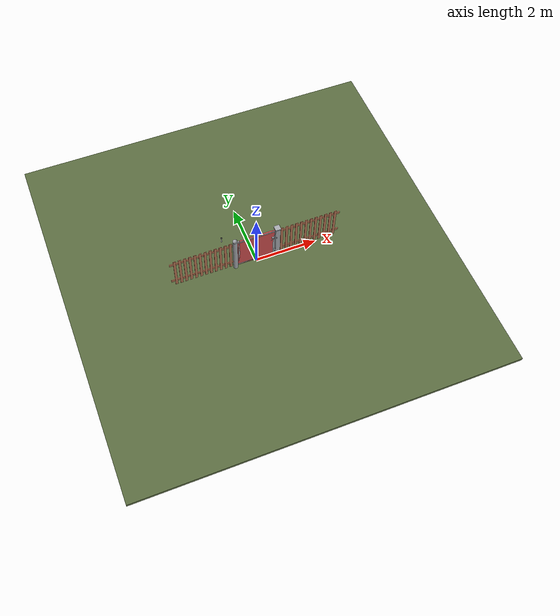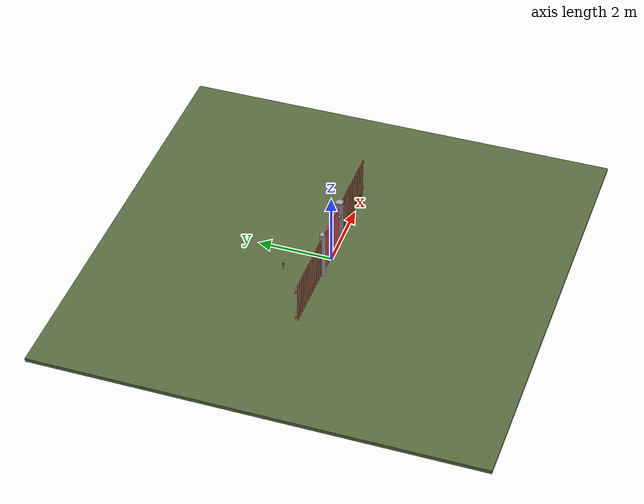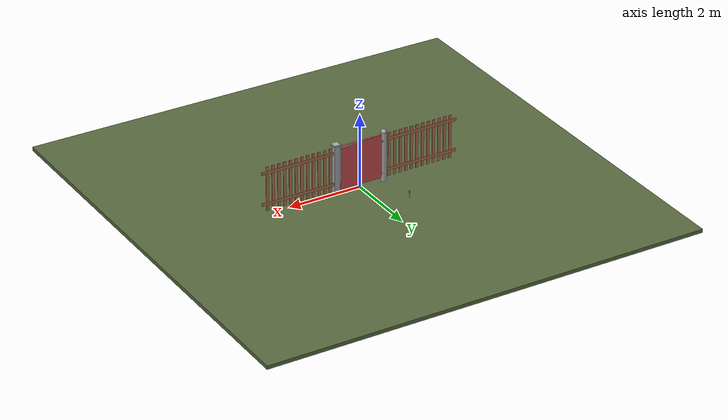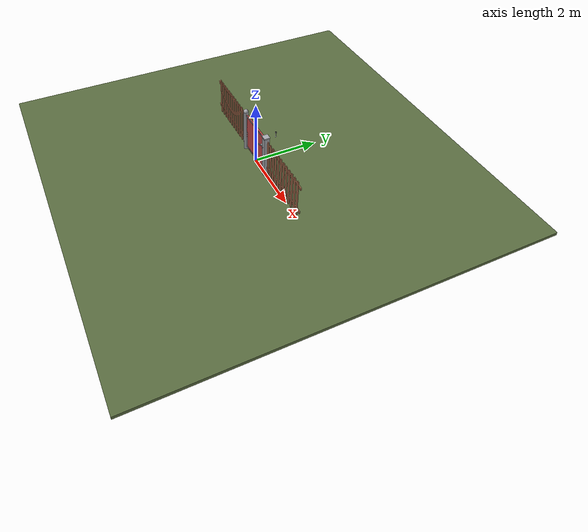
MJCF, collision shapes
<?xml version="1.0" ?>
<mujoco model="db0478_gate_swing_full">
  <compiler angle="radian" meshdir="../../hardware" texturedir="../../textures" autolimits="true" inertiafromgeom="false"/>
  <option timestep="0.002" integrator="implicitfast" cone="elliptic" impratio="10" noslip_iterations="3">
    <flag multiccd="enable"/>
  </option>
  <size memory="16M"/>
  <default>
    <geom condim="4" solref="0.005 1" solimp="0.95 0.99 0.001"/>
    <joint solreflimit="0.005 1" solimplimit="0.95 0.99 0.001"/>
    <tendon solreflimit="0.005 1"/>
    <equality solref="0.002 1"/>
  </default>
  <visual>
    <headlight ambient="0.4 0.4 0.4" diffuse="0.7 0.7 0.7" specular="0.2 0.2 0.2"/>
    <quality shadowsize="4096"/>
    <map znear="0.01" zfar="60"/>
  </visual>
  <asset>
    <mesh name="strap_hinge_78d1bbb966" file="strap_hinge_78d1bbb966.obj"/>
    <material name="mat_floor" rgba="0.35 0.42 0.25 1" specular="0.2" shininess="0.15" reflectance="0"/>
    <material name="mat_wall" rgba="0.78 0.76 0.7 1" specular="0.2" shininess="0.1" reflectance="0"/>
    <material name="mat_leaf" rgba="0.65 0.66 0.68 1" specular="0.74" shininess="0.5" reflectance="0.36"/>
    <material name="mat_hinge" rgba="0.65 0.66 0.68 1" specular="0.74" shininess="0.5" reflectance="0.36"/>
    <material name="mat_op_steel_galvanized" rgba="0.65 0.66 0.68 1" specular="0.74" shininess="0.5" reflectance="0.36"/>
    <material name="mat_padlock" rgba="0.85 0.66 0.3 1" specular="0.8" shininess="0.75" reflectance="0.4"/>
    <material name="mat_frame" rgba="0.65 0.66 0.68 1" specular="0.74" shininess="0.5" reflectance="0.36"/>
    <material name="mat_bumper_stop" rgba="0.08 0.08 0.08 1" specular="0.2" shininess="0.1" reflectance="0"/>
    <material name="mat_stop_base" rgba="0.9 0.9 0.92 1" specular="0.8" shininess="0.9" reflectance="0.4"/>
    <material name="mat_fence" rgba="0.7 0.45 0.32 1" specular="0.2" shininess="0.4" reflectance="0"/>
    <texture name="skybox" type="skybox" builtin="gradient" rgb1="0.6 0.7 0.85" rgb2="0.9 0.92 0.95" width="256" height="256"/>
  </asset>
  <worldbody>
    <light name="sun" pos="1.5 -2.5 4" dir="-0.3 0.5 -0.8" directional="true" diffuse="0.8 0.8 0.8" specular="0.3 0.3 0.3" castshadow="true"/>
    <light name="fill" pos="-1.5 2.5 3" dir="0.3 -0.5 -0.7" directional="true" diffuse="0.35 0.35 0.4" castshadow="false"/>
    <camera name="robot_view" pos="0 -1.875 1.135" xyaxes="1 0 0 0 0.26963 0.962964" fovy="52"/>
    <camera name="far_view" pos="0 1.875 1.135" xyaxes="-1 0 0 0 -0.26963 0.962964" fovy="52"/>
    <camera name="iso" pos="1.425 -1.575 1.435" xyaxes="0.741536 0.670913 0 -0.242917 0.268487 0.932151" fovy="46"/>
    <camera name="detail_handle" pos="0.816 -0.889 1.28" xyaxes="0.97561 0.219512 0 -0.070934 0.315262 0.94635" fovy="38"/>
    <geom name="floor" type="box" size="6 6 0.05" pos="0 0 -0.05" material="mat_floor" group="0" contype="1" conaffinity="1" friction="0.8 0.005 0.0001" density="2400"/>
    <geom name="hinge_pintle_0" type="cylinder" size="0.008 0.02" pos="-0.603 0.05 0.224" material="mat_hinge" group="1" contype="0" conaffinity="0" density="7850"/>
    <geom name="hinge_pintle_1" type="cylinder" size="0.008 0.02" pos="-0.603 0.05 1.124" material="mat_hinge" group="1" contype="0" conaffinity="0" density="7850"/>
    <geom name="leaf_staple_leg_n" type="box" size="0.003 0.0025 0.013" pos="0.634 -0.088 0.9875" quat="0.707107 0.707107 0 0" material="mat_op_steel_galvanized" group="0" contype="1" conaffinity="1" friction="0.6 0.005 0.0001" density="7800"/>
    <geom name="leaf_staple_leg_p" type="box" size="0.003 0.0025 0.013" pos="0.634 -0.088 1.0125" quat="0.707107 0.707107 0 0" material="mat_op_steel_galvanized" group="0" contype="1" conaffinity="1" friction="0.6 0.005 0.0001" density="7800"/>
    <geom name="leaf_staple_bridge" type="box" size="0.003 0.015 0.0025" pos="0.634 -0.0985 1" quat="0.707107 0.707107 0 0" material="mat_op_steel_galvanized" group="0" contype="1" conaffinity="1" friction="0.6 0.005 0.0001" density="7800"/>
    <geom name="leaf_staple_base" type="box" size="0.016 0.021 0.001" pos="0.634 -0.076 1" quat="0.707107 0.707107 0 0" material="mat_op_steel_galvanized" group="1" contype="0" conaffinity="0" density="7800"/>
    <geom name="post_hinge" type="cylinder" size="0.075 0.675" pos="-0.681 0 0.675" material="mat_frame" group="0" contype="1" conaffinity="1" friction="0.6 0.005 0.0001" density="800"/>
    <geom name="post_hinge_cap" type="sphere" size="0.075" pos="-0.681 0 1.35" material="mat_frame" group="1" contype="0" conaffinity="0" density="800"/>
    <geom name="post_latch" type="box" size="0.075 0.075 0.675" pos="0.681 0 0.675" material="mat_frame" group="0" contype="1" conaffinity="1" friction="0.6 0.005 0.0001" density="800"/>
    <geom name="post_latch_cap" type="box" size="0.09 0.09 0.02" pos="0.681 0 1.37" material="mat_frame" group="1" contype="0" conaffinity="0" density="800"/>
    <geom name="gate_stop" type="box" size="0.02 0.012 0.06" pos="0.586 -0.0345 0.35" material="mat_frame" group="0" contype="1" conaffinity="1" friction="0.6 0.005 0.0001" density="800"/>
    <geom name="door_stop_base" type="cylinder" size="0.022 0.003" pos="-0.77569 1.055285 0.003" material="mat_stop_base" group="0" contype="1" conaffinity="1" friction="0.6 0.005 0.0001" density="7850"/>
    <geom name="door_stop_post" type="cylinder" size="0.012 0.067" pos="-0.77569 1.055285 0.073" material="mat_stop_base" group="0" contype="1" conaffinity="1" friction="0.6 0.005 0.0001" density="7850"/>
    <geom name="door_stop_bumper" type="cylinder" size="0.022 0.02" pos="-0.77569 1.055285 0.16" material="mat_bumper_stop" group="0" contype="1" conaffinity="1" friction="0.6 0.005 0.0001" density="1100"/>
    <geom name="fence_picket_l_0" type="box" size="0.04 0.01 0.6" pos="-0.836 0 0.7" material="mat_fence" group="0" contype="1" conaffinity="1" friction="0.6 0.005 0.0001" density="400"/>
    <geom name="fence_picket_l_1" type="box" size="0.04 0.01 0.6" pos="-0.996 0 0.7" material="mat_fence" group="0" contype="1" conaffinity="1" friction="0.6 0.005 0.0001" density="400"/>
    <geom name="fence_picket_l_2" type="box" size="0.04 0.01 0.6" pos="-1.156 0 0.7" material="mat_fence" group="0" contype="1" conaffinity="1" friction="0.6 0.005 0.0001" density="400"/>
    <geom name="fence_picket_l_3" type="box" size="0.04 0.01 0.6" pos="-1.316 0 0.7" material="mat_fence" group="0" contype="1" conaffinity="1" friction="0.6 0.005 0.0001" density="400"/>
    <geom name="fence_picket_l_4" type="box" size="0.04 0.01 0.6" pos="-1.476 0 0.7" material="mat_fence" group="0" contype="1" conaffinity="1" friction="0.6 0.005 0.0001" density="400"/>
    <geom name="fence_picket_l_5" type="box" size="0.04 0.01 0.6" pos="-1.636 0 0.7" material="mat_fence" group="0" contype="1" conaffinity="1" friction="0.6 0.005 0.0001" density="400"/>
    <geom name="fence_picket_l_6" type="box" size="0.04 0.01 0.6" pos="-1.796 0 0.7" material="mat_fence" group="0" contype="1" conaffinity="1" friction="0.6 0.005 0.0001" density="400"/>
    <geom name="fence_picket_l_7" type="box" size="0.04 0.01 0.6" pos="-1.956 0 0.7" material="mat_fence" group="0" contype="1" conaffinity="1" friction="0.6 0.005 0.0001" density="400"/>
    <geom name="fence_picket_l_8" type="box" size="0.04 0.01 0.6" pos="-2.116 0 0.7" material="mat_fence" group="0" contype="1" conaffinity="1" friction="0.6 0.005 0.0001" density="400"/>
    <geom name="fence_picket_l_9" type="box" size="0.04 0.01 0.6" pos="-2.276 0 0.7" material="mat_fence" group="0" contype="1" conaffinity="1" friction="0.6 0.005 0.0001" density="400"/>
    <geom name="fence_picket_l_10" type="box" size="0.04 0.01 0.6" pos="-2.436 0 0.7" material="mat_fence" group="0" contype="1" conaffinity="1" friction="0.6 0.005 0.0001" density="400"/>
    <geom name="fence_picket_l_11" type="box" size="0.04 0.01 0.6" pos="-2.596 0 0.7" material="mat_fence" group="0" contype="1" conaffinity="1" friction="0.6 0.005 0.0001" density="400"/>
    <geom name="fence_rail_l" type="box" size="1 0.015 0.04" pos="-1.756 0.015 1.15" material="mat_fence" group="0" contype="1" conaffinity="1" friction="0.6 0.005 0.0001" density="400"/>
    <geom name="fence_rail_b_l" type="box" size="1 0.015 0.04" pos="-1.756 0.015 0.3" material="mat_fence" group="0" contype="1" conaffinity="1" friction="0.6 0.005 0.0001" density="400"/>
    <geom name="fence_picket_r_0" type="box" size="0.04 0.01 0.6" pos="0.836 0 0.7" material="mat_fence" group="0" contype="1" conaffinity="1" friction="0.6 0.005 0.0001" density="400"/>
    <geom name="fence_picket_r_1" type="box" size="0.04 0.01 0.6" pos="0.996 0 0.7" material="mat_fence" group="0" contype="1" conaffinity="1" friction="0.6 0.005 0.0001" density="400"/>
    <geom name="fence_picket_r_2" type="box" size="0.04 0.01 0.6" pos="1.156 0 0.7" material="mat_fence" group="0" contype="1" conaffinity="1" friction="0.6 0.005 0.0001" density="400"/>
    <geom name="fence_picket_r_3" type="box" size="0.04 0.01 0.6" pos="1.316 0 0.7" material="mat_fence" group="0" contype="1" conaffinity="1" friction="0.6 0.005 0.0001" density="400"/>
    <geom name="fence_picket_r_4" type="box" size="0.04 0.01 0.6" pos="1.476 0 0.7" material="mat_fence" group="0" contype="1" conaffinity="1" friction="0.6 0.005 0.0001" density="400"/>
    <geom name="fence_picket_r_5" type="box" size="0.04 0.01 0.6" pos="1.636 0 0.7" material="mat_fence" group="0" contype="1" conaffinity="1" friction="0.6 0.005 0.0001" density="400"/>
    <geom name="fence_picket_r_6" type="box" size="0.04 0.01 0.6" pos="1.796 0 0.7" material="mat_fence" group="0" contype="1" conaffinity="1" friction="0.6 0.005 0.0001" density="400"/>
    <geom name="fence_picket_r_7" type="box" size="0.04 0.01 0.6" pos="1.956 0 0.7" material="mat_fence" group="0" contype="1" conaffinity="1" friction="0.6 0.005 0.0001" density="400"/>
    <geom name="fence_picket_r_8" type="box" size="0.04 0.01 0.6" pos="2.116 0 0.7" material="mat_fence" group="0" contype="1" conaffinity="1" friction="0.6 0.005 0.0001" density="400"/>
    <geom name="fence_picket_r_9" type="box" size="0.04 0.01 0.6" pos="2.276 0 0.7" material="mat_fence" group="0" contype="1" conaffinity="1" friction="0.6 0.005 0.0001" density="400"/>
    <geom name="fence_picket_r_10" type="box" size="0.04 0.01 0.6" pos="2.436 0 0.7" material="mat_fence" group="0" contype="1" conaffinity="1" friction="0.6 0.005 0.0001" density="400"/>
    <geom name="fence_picket_r_11" type="box" size="0.04 0.01 0.6" pos="2.596 0 0.7" material="mat_fence" group="0" contype="1" conaffinity="1" friction="0.6 0.005 0.0001" density="400"/>
    <geom name="fence_rail_r" type="box" size="1 0.015 0.04" pos="1.756 0.015 1.15" material="mat_fence" group="0" contype="1" conaffinity="1" friction="0.6 0.005 0.0001" density="400"/>
    <geom name="fence_rail_b_r" type="box" size="1 0.015 0.04" pos="1.756 0.015 0.3" material="mat_fence" group="0" contype="1" conaffinity="1" friction="0.6 0.005 0.0001" density="400"/>
    <geom name="hinge_pintle_1_strap_0" type="box" size="0.073 0.0152 0.016" pos="-0.6835 0.0412 1.124" material="mat_hinge" group="1" contype="0" conaffinity="0" density="7850"/>
    <site name="approach_point" pos="0 -1.5 0" quat="1 0 0 0" size="0.05" rgba="0.2 0.9 0.2 0.5" group="4"/>
    <site name="goal_point" pos="0 1.5 0" quat="1 0 0 0" size="0.05" rgba="0.2 0.9 0.2 0.5" group="4"/>
    <site name="door_plane_center" pos="0 0 0.61" quat="1 0 0 0" size="0.02" rgba="0.2 0.9 0.2 0.5" group="4"/>
    <body name="leaf" pos="-0.606 0 0">
      <inertial pos="0.580676 0.000544 0.712484" mass="20.49556" quat="0.687444 -0.687442 -0.159222 -0.171735" diaginertia="2.52682364 2.872979591 5.3874375"/>
      <joint name="leaf_hinge" type="hinge" axis="0 0 1" pos="0.003 0.05 0" limited="true" range="0 1.745329" damping="0.499391" frictionloss="1.382494" armature="0.02"/>
      <geom name="leaf_slab_col" type="box" size="0.6 0.0225 0.6" pos="0.603 0 0.7" material="mat_leaf" group="3" contype="1" conaffinity="1" rgba="0.8 0.3 0.3 0.25" friction="0.42 0.005 0.0001" density="1"/>
      <geom name="leaf_rail_b" type="box" size="0.6 0.0225 0.03" pos="0.603 0 0.13" material="mat_leaf" group="1" contype="0" conaffinity="0" density="1"/>
      <geom name="leaf_rail_t" type="box" size="0.6 0.0225 0.03" pos="0.603 0 1.27" material="mat_leaf" group="1" contype="0" conaffinity="0" density="1"/>
      <geom name="leaf_stile_h" type="box" size="0.03 0.0225 0.6" pos="0.033 0 0.7" material="mat_leaf" group="1" contype="0" conaffinity="0" density="1"/>
      <geom name="leaf_stile_l" type="box" size="0.03 0.0225 0.6" pos="1.173 0 0.7" material="mat_leaf" group="1" contype="0" conaffinity="0" density="1"/>
      <geom name="leaf_bar_0" type="cylinder" size="0.0095 0.54" pos="0.1305 0 0.7" material="mat_leaf" group="1" contype="0" conaffinity="0" density="1"/>
      <geom name="leaf_bar_1" type="cylinder" size="0.0095 0.54" pos="0.2655 0 0.7" material="mat_leaf" group="1" contype="0" conaffinity="0" density="1"/>
      <geom name="leaf_bar_2" type="cylinder" size="0.0095 0.54" pos="0.4005 0 0.7" material="mat_leaf" group="1" contype="0" conaffinity="0" density="1"/>
      <geom name="leaf_bar_3" type="cylinder" size="0.0095 0.54" pos="0.5355 0 0.7" material="mat_leaf" group="1" contype="0" conaffinity="0" density="1"/>
      <geom name="leaf_bar_4" type="cylinder" size="0.0095 0.54" pos="0.6705 0 0.7" material="mat_leaf" group="1" contype="0" conaffinity="0" density="1"/>
      <geom name="leaf_bar_5" type="cylinder" size="0.0095 0.54" pos="0.8055 0 0.7" material="mat_leaf" group="1" contype="0" conaffinity="0" density="1"/>
      <geom name="leaf_bar_6" type="cylinder" size="0.0095 0.54" pos="0.9405 0 0.7" material="mat_leaf" group="1" contype="0" conaffinity="0" density="1"/>
      <geom name="leaf_bar_7" type="cylinder" size="0.0095 0.54" pos="1.0755 0 0.7" material="mat_leaf" group="1" contype="0" conaffinity="0" density="1"/>
      <geom name="leaf_crossbar_33" type="box" size="0.54 0.018 0.02" pos="0.603 0 0.496" material="mat_leaf" group="1" contype="0" conaffinity="0" density="1"/>
      <geom name="leaf_crossbar_66" type="box" size="0.54 0.018 0.02" pos="0.603 0 0.892" material="mat_leaf" group="1" contype="0" conaffinity="0" density="1"/>
      <geom name="hinge_strap_0" type="mesh" mesh="strap_hinge_78d1bbb966" pos="0.003 0.0255 0.25" material="mat_hinge" group="1" contype="0" conaffinity="0" density="7850"/>
      <geom name="hinge_strap_eye_0" type="cylinder" size="0.011 0.012" pos="0.003 0.05 0.25" material="mat_hinge" group="1" contype="0" conaffinity="0" density="7850"/>
      <geom name="hinge_strap_neck_0" type="box" size="0.012 0.01625 0.006" pos="0.003 0.03775 0.25" material="mat_hinge" group="1" contype="0" conaffinity="0" density="7850"/>
      <geom name="hinge_strap_1" type="mesh" mesh="strap_hinge_78d1bbb966" pos="0.003 0.0255 1.15" material="mat_hinge" group="1" contype="0" conaffinity="0" density="7850"/>
      <geom name="hinge_strap_eye_1" type="cylinder" size="0.011 0.012" pos="0.003 0.05 1.15" material="mat_hinge" group="1" contype="0" conaffinity="0" density="7850"/>
      <geom name="hinge_strap_neck_1" type="box" size="0.012 0.01625 0.006" pos="0.003 0.03775 1.15" material="mat_hinge" group="1" contype="0" conaffinity="0" density="7850"/>
      <geom name="leaf_hasp_plate" type="box" size="0.024 0.0215 0.02825" pos="1.128 -0.05075 1" quat="0.707107 0.707107 0 0" material="mat_op_steel_galvanized" group="1" contype="0" conaffinity="0" density="7800"/>
      <site name="leaf_edge_mid" pos="1.203 0 0.6" quat="1 0 0 0" size="0.02" rgba="0.2 0.9 0.2 0.5" group="4"/>
      <body name="leaf_hasp" pos="1.148 -0.079 1">
        <inertial pos="-0.044323 -0.01367 0" mass="0.11484" quat="0.695849 -0.695849 -0.125677 0.125677" diaginertia="0.000013089 0.000158235 0.000170826"/>
        <joint name="leaf_hasp_hinge" type="hinge" axis="0 0 -1" limited="true" range="0 2.9" damping="0.02" frictionloss="0.05" armature="0.005" ref="2.8"/>
        <geom name="leaf_hasp_strap" type="box" size="0.057 0.0175 0.0015" pos="-0.054209 -0.017681 0" quat="0.120185 0.120185 -0.696818 -0.696818" material="mat_op_steel_galvanized" group="0" contype="1" conaffinity="1" friction="0.6 0.005 0.0001" density="7800"/>
        <geom name="leaf_hasp_knuckle" type="cylinder" size="0.0045 0.0215" pos="-0.00134 0.003769 0" quat="0 0.169967 -0.98545 0" material="mat_op_steel_galvanized" group="1" contype="0" conaffinity="0" density="7850"/>
        <site name="leaf_hasp_grip" pos="-0.091919 -0.022067 0" quat="0.169967 0 0 -0.98545" size="0.01" rgba="0.2 0.9 0.2 0.5" group="4"/>
      </body>
    </body>
  </worldbody>
  <sensor>
    <jointpos name="leaf_hinge_pos" joint="leaf_hinge"/>
    <jointvel name="leaf_hinge_vel" joint="leaf_hinge"/>
    <jointpos name="leaf_hasp_hinge_pos" joint="leaf_hasp_hinge"/>
    <jointvel name="leaf_hasp_hinge_vel" joint="leaf_hasp_hinge"/>
  </sensor>
</mujoco>
